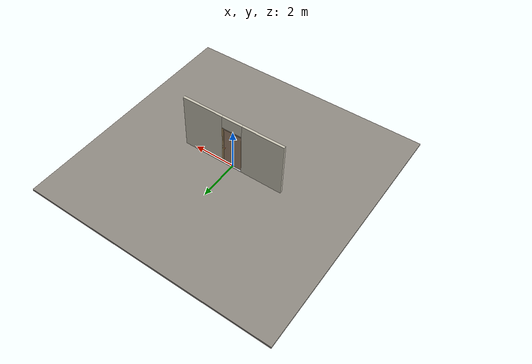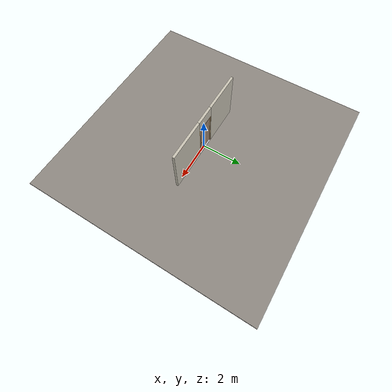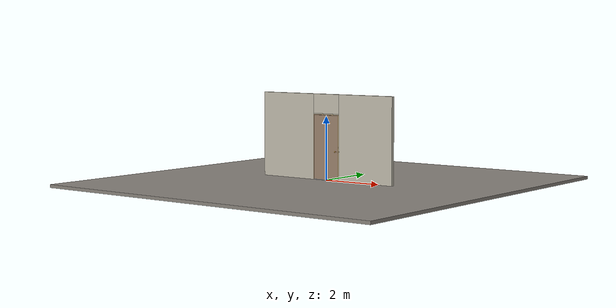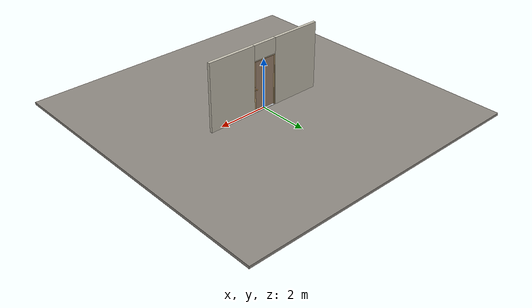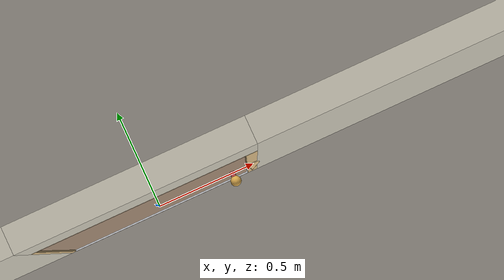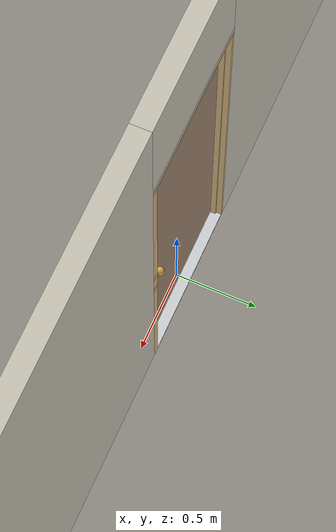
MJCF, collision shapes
<?xml version="1.0" ?>
<mujoco model="db0255_swing_single_minimal">
  <compiler angle="radian" meshdir="../../hardware" texturedir="../../textures" autolimits="true" inertiafromgeom="false"/>
  <option timestep="0.002" integrator="implicitfast" cone="elliptic" impratio="10" noslip_iterations="3">
    <flag multiccd="enable"/>
  </option>
  <size memory="16M"/>
  <default>
    <geom condim="4" solref="0.005 1" solimp="0.95 0.99 0.001"/>
    <joint solreflimit="0.005 1" solimplimit="0.95 0.99 0.001"/>
    <tendon solreflimit="0.005 1"/>
    <equality solref="0.002 1"/>
  </default>
  <visual>
    <headlight ambient="0.4 0.4 0.4" diffuse="0.7 0.7 0.7" specular="0.2 0.2 0.2"/>
    <quality shadowsize="4096"/>
    <map znear="0.01" zfar="60"/>
  </visual>
  <asset>
    <mesh name="knob_d1888f6f03" file="knob_d1888f6f03.obj"/>
    <material name="mat_floor" rgba="0.55 0.53 0.5 1" specular="0.2" shininess="0.15" reflectance="0"/>
    <material name="mat_wall" rgba="0.78 0.76 0.7 1" specular="0.2" shininess="0.1" reflectance="0"/>
    <material name="mat_leaf" rgba="0.625 0.525 0.44 1" specular="0.2" shininess="0.45" reflectance="0"/>
    <material name="mat_leaf_panel" rgba="0.575 0.483 0.405 1" specular="0.2" shininess="0.45" reflectance="0"/>
    <material name="mat_hinge" rgba="0.65 0.66 0.68 1" specular="0.74" shininess="0.5" reflectance="0.36"/>
    <material name="mat_op_brass" rgba="0.85 0.66 0.3 1" specular="0.8" shininess="0.75" reflectance="0.4"/>
    <material name="mat_trim" rgba="0.85 0.66 0.3 1" specular="0.8" shininess="0.75" reflectance="0.4"/>
    <material name="mat_bolt" rgba="0.85 0.66 0.3 1" specular="0.8" shininess="0.75" reflectance="0.4"/>
    <material name="mat_deadbolt" rgba="0.85 0.66 0.3 1" specular="0.8" shininess="0.75" reflectance="0.4"/>
    <material name="mat_frame" rgba="0.82 0.7 0.5 1" specular="0.2" shininess="0.45" reflectance="0"/>
    <material name="mat_seal" rgba="0.1 0.1 0.1 1" specular="0.2" shininess="0.1" reflectance="0"/>
    <material name="mat_threshold" rgba="0.8 0.81 0.83 1" specular="0.8" shininess="0.6" reflectance="0.4"/>
    <material name="mat_closer" rgba="0.22 0.17 0.13 1" specular="0.8" shininess="0.6" reflectance="0.4"/>
    <material name="mat_peephole" rgba="0.85 0.66 0.3 1" specular="0.8" shininess="0.75" reflectance="0.4"/>
    <material name="mat_stop" rgba="0.9 0.9 0.92 1" specular="0.8" shininess="0.9" reflectance="0.4"/>
    <texture name="skybox" type="skybox" builtin="gradient" rgb1="0.6 0.7 0.85" rgb2="0.9 0.92 0.95" width="256" height="256"/>
  </asset>
  <worldbody>
    <light name="sun" pos="1.5 -2.5 4" dir="-0.3 0.5 -0.8" directional="true" diffuse="0.8 0.8 0.8" specular="0.3 0.3 0.3" castshadow="true"/>
    <light name="fill" pos="-1.5 2.5 3" dir="0.3 -0.5 -0.7" directional="true" diffuse="0.35 0.35 0.4" castshadow="false"/>
    <camera name="robot_view" pos="0 -2.513687 1.734312" xyaxes="1 0 0 0 0.26963 0.962964" fovy="52"/>
    <camera name="far_view" pos="0 2.570688 1.734312" xyaxes="-1 0 0 0 -0.26963 0.962964" fovy="52"/>
    <camera name="iso" pos="1.932062 -2.106937 2.141063" xyaxes="0.741536 0.670913 0 -0.242917 0.268487 0.932151" fovy="46"/>
    <camera name="detail_handle" pos="0.5665 -0.8685 1.194" xyaxes="0.97561 0.219512 0 -0.070934 0.315262 0.94635" fovy="38"/>
    <geom name="floor" type="box" size="6 6 0.05" pos="0 0 -0.05" material="mat_floor" group="0" contype="1" conaffinity="1" friction="0.8 0.005 0.0001" density="2400"/>
    <geom name="wall_left" type="box" size="1.01025 0.0575 1.35" pos="-1.48975 0.0285 1.35" material="mat_wall" group="0" contype="1" conaffinity="1" friction="0.6 0.005 0.0001" density="800"/>
    <geom name="wall_right" type="box" size="0.99525 0.0575 1.35" pos="1.50475 0.0285 1.35" material="mat_wall" group="0" contype="1" conaffinity="1" friction="0.6 0.005 0.0001" density="800"/>
    <geom name="wall_header" type="box" size="0.4945 0.0575 0.303" pos="0.015 0.0285 2.397" material="mat_wall" group="0" contype="1" conaffinity="1" friction="0.6 0.005 0.0001" density="800"/>
    <geom name="jamb_hinge" type="box" size="0.0095 0.0575 1.0225" pos="-0.47 0.0285 1.0225" material="mat_frame" group="0" contype="1" conaffinity="1" friction="0.6 0.005 0.0001" density="400"/>
    <geom name="strike_914_wall_n" type="box" size="0.0245 0.039075 0.0167" pos="0.485 0.046925 0.914" material="mat_frame" group="0" contype="1" conaffinity="1" friction="0.6 0.005 0.0001" density="400"/>
    <geom name="strike_914_wall_p" type="box" size="0.0245 0.008 0.0167" pos="0.485 -0.01585 0.914" material="mat_frame" group="0" contype="1" conaffinity="1" friction="0.6 0.005 0.0001" density="400"/>
    <geom name="strike_914_ramp" type="box" size="0.0245 0.01649 0.0167" pos="0.489636 -0.028673 0.914" quat="0.977148 0 0 0.212558" material="mat_frame" group="0" contype="1" conaffinity="1" friction="0.12 0.005 0.0001" density="400"/>
    <geom name="strike_914_back" type="box" size="0.01615 0.00785 0.0167" pos="0.49335 0 0.914" material="mat_frame" group="0" contype="1" conaffinity="1" friction="0.6 0.005 0.0001" density="400"/>
    <geom name="strike_1054_wall_n" type="box" size="0.0245 0.03825 0.0155" pos="0.485 0.04775 1.054" material="mat_frame" group="0" contype="1" conaffinity="1" friction="0.6 0.005 0.0001" density="400"/>
    <geom name="strike_1054_wall_p" type="box" size="0.0245 0.00975 0.0155" pos="0.485 -0.01925 1.054" material="mat_frame" group="0" contype="1" conaffinity="1" friction="0.6 0.005 0.0001" density="400"/>
    <geom name="strike_1054_back" type="box" size="0.0098 0.0095 0.0155" pos="0.4997 0 1.054" material="mat_frame" group="0" contype="1" conaffinity="1" friction="0.6 0.005 0.0001" density="400"/>
    <geom name="jamb_strike_0" type="box" size="0.0245 0.0575 0.44865" pos="0.485 0.0285 0.44865" material="mat_frame" group="0" contype="1" conaffinity="1" friction="0.6 0.005 0.0001" density="400"/>
    <geom name="jamb_strike_1" type="box" size="0.0245 0.0575 0.0539" pos="0.485 0.0285 0.9846" material="mat_frame" group="0" contype="1" conaffinity="1" friction="0.6 0.005 0.0001" density="400"/>
    <geom name="jamb_strike_2" type="box" size="0.0245 0.0575 0.48775" pos="0.485 0.0285 1.55725" material="mat_frame" group="0" contype="1" conaffinity="1" friction="0.6 0.005 0.0001" density="400"/>
    <geom name="jamb_head" type="box" size="0.4945 0.0575 0.0095" pos="0.015 0.0285 2.0545" material="mat_frame" group="0" contype="1" conaffinity="1" friction="0.6 0.005 0.0001" density="400"/>
    <geom name="head_stud" type="box" size="0.4945 0.0575 0.015" pos="0.015 0.0285 2.079" material="mat_wall" group="0" contype="1" conaffinity="1" friction="0.6 0.005 0.0001" density="500"/>
    <geom name="stop_hinge" type="box" size="0.0055 0.016 1.0225" pos="-0.455 0.0385 1.0225" material="mat_frame" group="0" contype="1" conaffinity="1" friction="0.6 0.005 0.0001" density="400"/>
    <geom name="stop_strike" type="box" size="0.0055 0.016 1.0225" pos="0.455 0.0385 1.0225" material="mat_frame" group="0" contype="1" conaffinity="1" friction="0.6 0.005 0.0001" density="400"/>
    <geom name="stop_head" type="box" size="0.4605 0.016 0.0055" pos="0 0.0385 2.0395" material="mat_frame" group="0" contype="1" conaffinity="1" friction="0.6 0.005 0.0001" density="400"/>
    <geom name="threshold" type="box" size="0.4795 0.0575 0.0065" pos="0 0.0285 0.0065" material="mat_threshold" group="0" contype="1" conaffinity="1" friction="0.5 0.005 0.0001" density="2700"/>
    <site name="approach_point" pos="0 -1.5 0" quat="1 0 0 0" size="0.05" rgba="0.2 0.9 0.2 0.5" group="4"/>
    <site name="goal_point" pos="0 1.5 0" quat="1 0 0 0" size="0.05" rgba="0.2 0.9 0.2 0.5" group="4"/>
    <site name="door_plane_center" pos="0 0 1.0225" quat="1 0 0 0" size="0.02" rgba="0.2 0.9 0.2 0.5" group="4"/>
    <body name="leaf" pos="-0.4605 0 0">
      <inertial pos="0.46 0 1.029" mass="43.618477" quat="-0.5 0.5 0.5 0.5" diaginertia="3.043595516 14.897570789 17.927092076"/>
      <joint name="leaf_hinge" type="hinge" axis="0 0 -1" pos="0.003 -0.029 0" limited="true" range="0 1.658063" solreflimit="0.02 1" damping="6.25611" frictionloss="0.95807" stiffness="9.135494" springref="-1.778776" armature="0.02"/>
      <geom name="leaf_slab" type="box" size="0.457 0.022 1.012" pos="0.46 0 1.029" material="mat_leaf" group="0" contype="1" conaffinity="1" friction="0.35 0.005 0.0001" density="1"/>
      <site name="leaf_edge_mid" pos="0.917 0 1.012" quat="1 0 0 0" size="0.02" rgba="0.2 0.9 0.2 0.5" group="4"/>
      <body name="leaf_handle" pos="0.847 0 0.914">
        <inertial pos="0 0 0" mass="1.098683" quat="-0.5 0.5 -0.5 0.5" diaginertia="0.000311555 0.004248143 0.004248143"/>
        <joint name="leaf_handle_hinge" type="hinge" axis="0 -1 0" limited="true" range="0 0.87" damping="0.143614" frictionloss="0.038" stiffness="0.5" springref="-0.5" armature="0.01"/>
        <geom name="leaf_handle_knob_n" type="mesh" mesh="knob_d1888f6f03" pos="0 -0.022 0" quat="0.707107 0.707107 0 0" material="mat_op_brass" group="1" contype="0" conaffinity="0" density="3000"/>
        <geom name="leaf_handle_knob_col_n" type="sphere" size="0.0243" pos="0 -0.0685 0" material="mat_op_brass" group="0" contype="1" conaffinity="1" friction="0.9 0.01 0.0001" density="3000"/>
        <geom name="leaf_handle_knob_neck_n" type="cylinder" size="0.011 0.012" pos="0 -0.034 0" quat="0.707107 -0.707107 0 0" material="mat_op_brass" group="3" contype="1" conaffinity="1" rgba="0.8 0.3 0.3 0.25" friction="0.6 0.005 0.0001" density="3000"/>
        <geom name="leaf_handle_knob_p" type="mesh" mesh="knob_d1888f6f03" pos="0 0.022 0" quat="-0.707107 0.707107 0 0" material="mat_op_brass" group="1" contype="0" conaffinity="0" density="3000"/>
        <geom name="leaf_handle_knob_col_p" type="sphere" size="0.0243" pos="0 0.0685 0" material="mat_op_brass" group="0" contype="1" conaffinity="1" friction="0.9 0.01 0.0001" density="3000"/>
        <geom name="leaf_handle_knob_neck_p" type="cylinder" size="0.011 0.012" pos="0 0.034 0" quat="0.707107 -0.707107 0 0" material="mat_op_brass" group="3" contype="1" conaffinity="1" rgba="0.8 0.3 0.3 0.25" friction="0.6 0.005 0.0001" density="3000"/>
        <site name="leaf_handle_grip_n" pos="0 -0.0685 0" quat="1 0 0 0" size="0.012" rgba="0.2 0.9 0.2 0.5" group="4"/>
        <site name="leaf_handle_grip_p" pos="0 0.0685 0" quat="1 0 0 0" size="0.012" rgba="0.2 0.9 0.2 0.5" group="4"/>
      </body>
      <body name="leaf_latch_bolt" pos="0.917 0 0.914">
        <inertial pos="-0.00865 0 0" mass="0.041419" quat="0.92388 -0.382683 0 0" diaginertia="0.000000798 0.000005598 0.000005598"/>
        <joint name="leaf_latch_bolt_slide" type="slide" axis="-1 0 0" limited="true" range="0 0.0127" damping="2" frictionloss="0.3" stiffness="300" springref="-0.008333" armature="0.1"/>
        <geom name="leaf_latch_bolt_capsule" type="capsule" size="0.00635 0.015" pos="-0.00865 0 0" quat="0.707107 0 0.707107 0" material="mat_bolt" group="0" contype="1" conaffinity="1" friction="0.2 0.005 0.0001" density="8500"/>
      </body>
    </body>
  </worldbody>
  <tendon>
    <fixed name="leaf_latch_bolt_coupling" limited="true" range="0 10">
      <joint joint="leaf_latch_bolt_slide" coef="1"/>
      <joint joint="leaf_handle_hinge" coef="-0.015679"/>
    </fixed>
  </tendon>
  <sensor>
    <jointpos name="leaf_hinge_pos" joint="leaf_hinge"/>
    <jointvel name="leaf_hinge_vel" joint="leaf_hinge"/>
    <jointpos name="leaf_handle_hinge_pos" joint="leaf_handle_hinge"/>
    <jointvel name="leaf_handle_hinge_vel" joint="leaf_handle_hinge"/>
    <jointpos name="leaf_latch_bolt_slide_pos" joint="leaf_latch_bolt_slide"/>
    <jointvel name="leaf_latch_bolt_slide_vel" joint="leaf_latch_bolt_slide"/>
  </sensor>
</mujoco>
